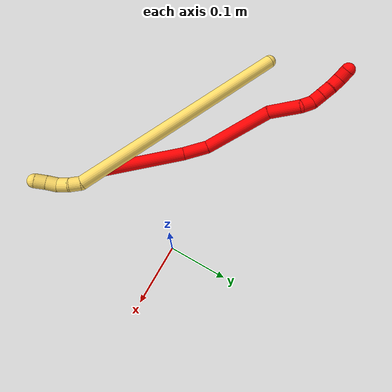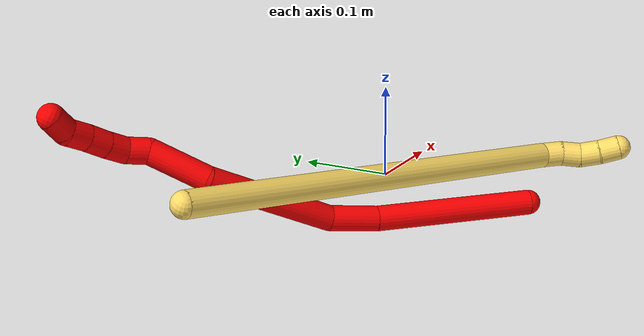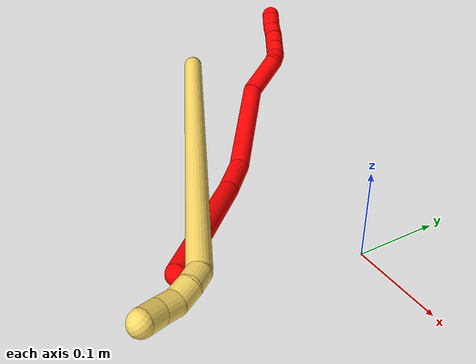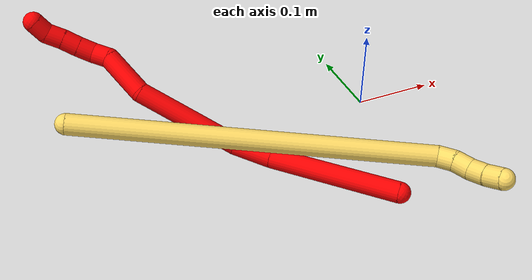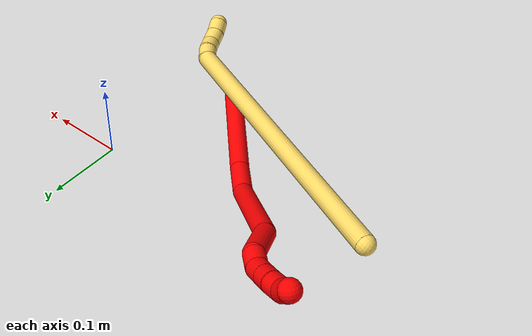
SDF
<sdf version="1.7">
 <world name="default">
  <model name="photoneo_s_sensor">
   <static>1</static>
   <pose>0 0 2 1.57079 1.57079 3.14159</pose>
   <link name="link">
    <inertial><mass>0.1</mass></inertial>
    <sensor name="sensor" type="depth">
     <update_rate>30</update_rate>
     <camera>
      <horizontal_fov>1.22</horizontal_fov>
      <image><width>1920</width><height>1200</height><format>B8G8R8</format></image>
      <clip><near>0.1</near><far>4</far></clip>
      <depth_camera><output>points</output></depth_camera>
     </camera>
     <plugin name="camera_plugin" filename="libgazebo_ros_depth_camera.so">
      <baseline>0.2</baseline>
      <alwaysOn>1</alwaysOn>
      <updateRate>0.0</updateRate>
      <cameraName>camera_ir</cameraName>
      <imageTopicName>/camera/color/image_raw</imageTopicName>
      <cameraInfoTopicName>/camera/color/camera_info</cameraInfoTopicName>
      <depthImageTopicName>/camera/depth/image_raw</depthImageTopicName>
      <depthImageCameraInfoTopicName>/camera/depth/camera_info</depthImageCameraInfoTopicName>
      <pointCloudTopicName>/camera/depth/points</pointCloudTopicName>
      <frameName>fr_optical</frameName>
      <pointCloudCutoff>0.1</pointCloudCutoff>
      <pointCloudCutoffMax>2.0</pointCloudCutoffMax>
      <distortionK1>0</distortionK1>
      <distortionK2>0</distortionK2>
      <distortionK3>0</distortionK3>
      <distortionT1>0</distortionT1>
      <distortionT2>0</distortionT2>
      <CxPrime>0</CxPrime>
      <Cx>0</Cx>
      <Cy>0</Cy>
      <focalLength>0</focalLength>
      <hackBaseline>0</hackBaseline>
     </plugin>
    </sensor>
   </link>
  </model>
  <model name="bin">
   <static>1</static>
   <link name="bottom">
    <collision name="collision-bottom">
     <pose>0 0 -0.01 0 -0 0</pose>
     <geometry><box><size>0.8 0.6 0.02</size></box></geometry>
     <surface>
      <friction><ode><mu>100</mu><mu2>100</mu2></ode></friction>
      <contact><collide_bitmask>65535</collide_bitmask></contact>
     </surface>
    </collision>
   </link>
   <link name="west_wall">
    <collision name="collision-west_wall">
     <pose>-0.41 0 0.1 0 -0 0</pose>
     <geometry><box><size>0.02 0.6 0.2</size></box></geometry>
     <surface>
      <friction><ode><mu>100</mu><mu2>100</mu2></ode></friction>
      <contact><collide_bitmask>65535</collide_bitmask></contact>
     </surface>
    </collision>
   </link>
   <link name="east_wall">
    <collision name="collision-east_wall">
     <pose>0.41 0 0.1 0 -0 0</pose>
     <geometry><box><size>0.02 0.6 0.2</size></box></geometry>
     <surface>
      <friction><ode><mu>100</mu><mu2>100</mu2></ode></friction>
      <contact><collide_bitmask>65535</collide_bitmask></contact>
     </surface>
    </collision>
   </link>
   <link name="south_wall">
    <collision name="collision-south_wall">
     <pose>0 -0.31 0.1 0 -0 0</pose>
     <geometry><box><size>0.8 0.02 0.2</size></box></geometry>
     <surface>
      <friction><ode><mu>100</mu><mu2>100</mu2></ode></friction>
      <contact><collide_bitmask>65535</collide_bitmask></contact>
     </surface>
    </collision>
   </link>
   <link name="north_wall">
    <collision name="collision-north_wall">
     <pose>0 0.31 0.1 0 -0 0</pose>
     <geometry><box><size>0.8 0.02 0.2</size></box></geometry>
     <surface>
      <friction><ode><mu>100</mu><mu2>100</mu2></ode></friction>
      <contact><collide_bitmask>65535</collide_bitmask></contact>
     </surface>
    </collision>
   </link>
  </model>
  <model name="2">
   <static>0</static>
   <link name="2">
    <collision name="collision-cylinder-e_1_1_4">
     <pose>-0.048869 0.048779 0.039446 -0.890786 -0.661808 0.325103</pose>
     <geometry><cylinder><radius>0.0125</radius><length>0.159042</length></cylinder></geometry>
     <surface>
      <friction><ode><mu>1.16</mu><mu2>1.16</mu2><slip1>0</slip1><slip2>0</slip2></ode></friction>
      <contact><ode><kp>1e+06</kp><kd>1</kd><max_vel>0</max_vel><min_depth>0.001</min_depth></ode></contact>
     </surface>
    </collision>
    <visual name="visual-cylinder-e_1_1_4">
     <pose>-0.048869 0.048779 0.039446 -0.890786 -0.661808 0.325103</pose>
     <geometry><cylinder><radius>0.0125</radius><length>0.159042</length></cylinder></geometry>
     <material><ambient>1 0 0 1</ambient></material>
    </visual>
    <collision name="collision-cylinder-e_2_4_5">
     <pose>-0.11258 0.114149 0.088171 -1.0609 -0.662919 0.398357</pose>
     <geometry><cylinder><radius>0.0125</radius><length>0.048233</length></cylinder></geometry>
     <surface>
      <friction><ode><mu>1.16</mu><mu2>1.16</mu2><slip1>0</slip1><slip2>0</slip2></ode></friction>
      <contact><ode><kp>1e+06</kp><kd>1</kd><max_vel>0</max_vel><min_depth>0.001</min_depth></ode></contact>
     </surface>
    </collision>
    <visual name="visual-cylinder-e_2_4_5">
     <pose>-0.11258 0.114149 0.088171 -1.0609 -0.662919 0.398357</pose>
     <geometry><cylinder><radius>0.0125</radius><length>0.048233</length></cylinder></geometry>
     <material><ambient>1 0 0 1</ambient></material>
    </visual>
    <collision name="collision-cylinder-e_3_5_6">
     <pose>-0.162318 0.185791 0.103872 -1.45465 -0.561904 0.502875</pose>
     <geometry><cylinder><radius>0.0125</radius><length>0.130991</length></cylinder></geometry>
     <surface>
      <friction><ode><mu>1.16</mu><mu2>1.16</mu2><slip1>0</slip1><slip2>0</slip2></ode></friction>
      <contact><ode><kp>1e+06</kp><kd>1</kd><max_vel>0</max_vel><min_depth>0.001</min_depth></ode></contact>
     </surface>
    </collision>
    <visual name="visual-cylinder-e_3_5_6">
     <pose>-0.162318 0.185791 0.103872 -1.45465 -0.561904 0.502875</pose>
     <geometry><cylinder><radius>0.0125</radius><length>0.130991</length></cylinder></geometry>
     <material><ambient>1 0 0 1</ambient></material>
    </visual>
    <collision name="collision-cylinder-e_4_6_7">
     <pose>-0.22145 0.257901 0.109779 -1.60098 -0.957281 0.98218</pose>
     <geometry><cylinder><radius>0.0125</radius><length>0.059285</length></cylinder></geometry>
     <surface>
      <friction><ode><mu>1.16</mu><mu2>1.16</mu2><slip1>0</slip1><slip2>0</slip2></ode></friction>
      <contact><ode><kp>1e+06</kp><kd>1</kd><max_vel>0</max_vel><min_depth>0.001</min_depth></ode></contact>
     </surface>
    </collision>
    <visual name="visual-cylinder-e_4_6_7">
     <pose>-0.22145 0.257901 0.109779 -1.60098 -0.957281 0.98218</pose>
     <geometry><cylinder><radius>0.0125</radius><length>0.059285</length></cylinder></geometry>
     <material><ambient>1 0 0 1</ambient></material>
    </visual>
    <collision name="collision-cylinder-e_5_7_8">
     <pose>-0.25181 0.282644 0.113276 -1.08962 -0.614927 0.380195</pose>
     <geometry><cylinder><radius>0.0125</radius><length>0.021226</length></cylinder></geometry>
     <surface>
      <friction><ode><mu>1.16</mu><mu2>1.16</mu2><slip1>0</slip1><slip2>0</slip2></ode></friction>
      <contact><ode><kp>1e+06</kp><kd>1</kd><max_vel>0</max_vel><min_depth>0.001</min_depth></ode></contact>
     </surface>
    </collision>
    <visual name="visual-cylinder-e_5_7_8">
     <pose>-0.25181 0.282644 0.113276 -1.08962 -0.614927 0.380195</pose>
     <geometry><cylinder><radius>0.0125</radius><length>0.021226</length></cylinder></geometry>
     <material><ambient>1 0 0 1</ambient></material>
    </visual>
    <collision name="collision-cylinder-e_6_8_9">
     <pose>-0.261672 0.299768 0.118418 -1.45169 -0.374835 0.333478</pose>
     <geometry><cylinder><radius>0.0125</radius><length>0.020431</length></cylinder></geometry>
     <surface>
      <friction><ode><mu>1.16</mu><mu2>1.16</mu2><slip1>0</slip1><slip2>0</slip2></ode></friction>
      <contact><ode><kp>1e+06</kp><kd>1</kd><max_vel>0</max_vel><min_depth>0.001</min_depth></ode></contact>
     </surface>
    </collision>
    <visual name="visual-cylinder-e_6_8_9">
     <pose>-0.261672 0.299768 0.118418 -1.45169 -0.374835 0.333478</pose>
     <geometry><cylinder><radius>0.0125</radius><length>0.020431</length></cylinder></geometry>
     <material><ambient>1 0 0 1</ambient></material>
    </visual>
    <collision name="collision-cylinder-e_7_9_10">
     <pose>-0.269241 0.318574 0.120079 -1.51418 -0.387461 0.366611</pose>
     <geometry><cylinder><radius>0.0125</radius><length>0.020268</length></cylinder></geometry>
     <surface>
      <friction><ode><mu>1.16</mu><mu2>1.16</mu2><slip1>0</slip1><slip2>0</slip2></ode></friction>
      <contact><ode><kp>1e+06</kp><kd>1</kd><max_vel>0</max_vel><min_depth>0.001</min_depth></ode></contact>
     </surface>
    </collision>
    <visual name="visual-cylinder-e_7_9_10">
     <pose>-0.269241 0.318574 0.120079 -1.51418 -0.387461 0.366611</pose>
     <geometry><cylinder><radius>0.0125</radius><length>0.020268</length></cylinder></geometry>
     <material><ambient>1 0 0 1</ambient></material>
    </visual>
    <collision name="collision-cylinder-e_8_10_11">
     <pose>-0.276034 0.337628 0.121728 -1.45586 -0.295039 0.263329</pose>
     <geometry><cylinder><radius>0.0125</radius><length>0.020383</length></cylinder></geometry>
     <surface>
      <friction><ode><mu>1.16</mu><mu2>1.16</mu2><slip1>0</slip1><slip2>0</slip2></ode></friction>
      <contact><ode><kp>1e+06</kp><kd>1</kd><max_vel>0</max_vel><min_depth>0.001</min_depth></ode></contact>
     </surface>
    </collision>
    <visual name="visual-cylinder-e_8_10_11">
     <pose>-0.276034 0.337628 0.121728 -1.45586 -0.295039 0.263329</pose>
     <geometry><cylinder><radius>0.0125</radius><length>0.020383</length></cylinder></geometry>
     <material><ambient>1 0 0 1</ambient></material>
    </visual>
    <collision name="collision-cylinder-e_9_11_2">
     <pose>-0.282158 0.356323 0.119639 -1.91282 -0.31927 0.448762</pose>
     <geometry><cylinder><radius>0.0125</radius><length>0.020141</length></cylinder></geometry>
     <surface>
      <friction><ode><mu>1.16</mu><mu2>1.16</mu2><slip1>0</slip1><slip2>0</slip2></ode></friction>
      <contact><ode><kp>1e+06</kp><kd>1</kd><max_vel>0</max_vel><min_depth>0.001</min_depth></ode></contact>
     </surface>
    </collision>
    <visual name="visual-cylinder-e_9_11_2">
     <pose>-0.282158 0.356323 0.119639 -1.91282 -0.31927 0.448762</pose>
     <geometry><cylinder><radius>0.0125</radius><length>0.020141</length></cylinder></geometry>
     <material><ambient>1 0 0 1</ambient></material>
    </visual>
    <collision name="collision-sphere-2">
     <pose>-0.285319 0.365331 0.116432 0 -0 0</pose>
     <geometry><sphere><radius>0.0125</radius></sphere></geometry>
     <surface>
      <friction><ode><mu>1.16</mu><mu2>1.16</mu2><slip1>0</slip1><slip2>0</slip2></ode></friction>
      <contact><ode><kp>1e+06</kp><kd>1</kd><max_vel>0</max_vel><min_depth>0.001</min_depth></ode></contact>
     </surface>
    </collision>
    <visual name="visual-sphere-2">
     <pose>-0.285319 0.365331 0.116432 0 -0 0</pose>
     <geometry><sphere><radius>0.0125</radius></sphere></geometry>
     <material><ambient>1 0 0 1</ambient></material>
    </visual>
    <collision name="collision-sphere-11">
     <pose>-0.278997 0.347315 0.122846 0 -0 0</pose>
     <geometry><sphere><radius>0.0125</radius></sphere></geometry>
     <surface>
      <friction><ode><mu>1.16</mu><mu2>1.16</mu2><slip1>0</slip1><slip2>0</slip2></ode></friction>
      <contact><ode><kp>1e+06</kp><kd>1</kd><max_vel>0</max_vel><min_depth>0.001</min_depth></ode></contact>
     </surface>
    </collision>
    <visual name="visual-sphere-11">
     <pose>-0.278997 0.347315 0.122846 0 -0 0</pose>
     <geometry><sphere><radius>0.0125</radius></sphere></geometry>
     <material><ambient>1 0 0 1</ambient></material>
    </visual>
    <collision name="collision-sphere-10">
     <pose>-0.27307 0.327942 0.12061 0 -0 0</pose>
     <geometry><sphere><radius>0.0125</radius></sphere></geometry>
     <surface>
      <friction><ode><mu>1.16</mu><mu2>1.16</mu2><slip1>0</slip1><slip2>0</slip2></ode></friction>
      <contact><ode><kp>1e+06</kp><kd>1</kd><max_vel>0</max_vel><min_depth>0.001</min_depth></ode></contact>
     </surface>
    </collision>
    <visual name="visual-sphere-10">
     <pose>-0.27307 0.327942 0.12061 0 -0 0</pose>
     <geometry><sphere><radius>0.0125</radius></sphere></geometry>
     <material><ambient>1 0 0 1</ambient></material>
    </visual>
    <collision name="collision-sphere-9">
     <pose>-0.265412 0.309206 0.119548 0 -0 0</pose>
     <geometry><sphere><radius>0.0125</radius></sphere></geometry>
     <surface>
      <friction><ode><mu>1.16</mu><mu2>1.16</mu2><slip1>0</slip1><slip2>0</slip2></ode></friction>
      <contact><ode><kp>1e+06</kp><kd>1</kd><max_vel>0</max_vel><min_depth>0.001</min_depth></ode></contact>
     </surface>
    </collision>
    <visual name="visual-sphere-9">
     <pose>-0.265412 0.309206 0.119548 0 -0 0</pose>
     <geometry><sphere><radius>0.0125</radius></sphere></geometry>
     <material><ambient>1 0 0 1</ambient></material>
    </visual>
    <collision name="collision-sphere-4">
     <pose>-0.097739 0.097558 0.078893 0 -0 0</pose>
     <geometry><sphere><radius>0.0125</radius></sphere></geometry>
     <surface>
      <friction><ode><mu>1.16</mu><mu2>1.16</mu2><slip1>0</slip1><slip2>0</slip2></ode></friction>
      <contact><ode><kp>1e+06</kp><kd>1</kd><max_vel>0</max_vel><min_depth>0.001</min_depth></ode></contact>
     </surface>
    </collision>
    <visual name="visual-sphere-4">
     <pose>-0.097739 0.097558 0.078893 0 -0 0</pose>
     <geometry><sphere><radius>0.0125</radius></sphere></geometry>
     <material><ambient>1 0 0 1</ambient></material>
    </visual>
    <collision name="collision-sphere-1">
     <geometry><sphere><radius>0.0125</radius></sphere></geometry>
     <surface>
      <friction><ode><mu>1.16</mu><mu2>1.16</mu2><slip1>0</slip1><slip2>0</slip2></ode></friction>
      <contact><ode><kp>1e+06</kp><kd>1</kd><max_vel>0</max_vel><min_depth>0.001</min_depth></ode></contact>
     </surface>
    </collision>
    <visual name="visual-sphere-1">
     <geometry><sphere><radius>0.0125</radius></sphere></geometry>
     <material><ambient>1 0 0 1</ambient></material>
    </visual>
    <collision name="collision-sphere-8">
     <pose>-0.257932 0.290329 0.117289 0 -0 0</pose>
     <geometry><sphere><radius>0.0125</radius></sphere></geometry>
     <surface>
      <friction><ode><mu>1.16</mu><mu2>1.16</mu2><slip1>0</slip1><slip2>0</slip2></ode></friction>
      <contact><ode><kp>1e+06</kp><kd>1</kd><max_vel>0</max_vel><min_depth>0.001</min_depth></ode></contact>
     </surface>
    </collision>
    <visual name="visual-sphere-8">
     <pose>-0.257932 0.290329 0.117289 0 -0 0</pose>
     <geometry><sphere><radius>0.0125</radius></sphere></geometry>
     <material><ambient>1 0 0 1</ambient></material>
    </visual>
    <collision name="collision-sphere-5">
     <pose>-0.127422 0.130739 0.097449 0 -0 0</pose>
     <geometry><sphere><radius>0.0125</radius></sphere></geometry>
     <surface>
      <friction><ode><mu>1.16</mu><mu2>1.16</mu2><slip1>0</slip1><slip2>0</slip2></ode></friction>
      <contact><ode><kp>1e+06</kp><kd>1</kd><max_vel>0</max_vel><min_depth>0.001</min_depth></ode></contact>
     </surface>
    </collision>
    <visual name="visual-sphere-5">
     <pose>-0.127422 0.130739 0.097449 0 -0 0</pose>
     <geometry><sphere><radius>0.0125</radius></sphere></geometry>
     <material><ambient>1 0 0 1</ambient></material>
    </visual>
    <collision name="collision-sphere-6">
     <pose>-0.197214 0.240843 0.110295 0 -0 0</pose>
     <geometry><sphere><radius>0.0125</radius></sphere></geometry>
     <surface>
      <friction><ode><mu>1.16</mu><mu2>1.16</mu2><slip1>0</slip1><slip2>0</slip2></ode></friction>
      <contact><ode><kp>1e+06</kp><kd>1</kd><max_vel>0</max_vel><min_depth>0.001</min_depth></ode></contact>
     </surface>
    </collision>
    <visual name="visual-sphere-6">
     <pose>-0.197214 0.240843 0.110295 0 -0 0</pose>
     <geometry><sphere><radius>0.0125</radius></sphere></geometry>
     <material><ambient>1 0 0 1</ambient></material>
    </visual>
    <collision name="collision-sphere-7">
     <pose>-0.245687 0.27496 0.109264 0 -0 0</pose>
     <geometry><sphere><radius>0.0125</radius></sphere></geometry>
     <surface>
      <friction><ode><mu>1.16</mu><mu2>1.16</mu2><slip1>0</slip1><slip2>0</slip2></ode></friction>
      <contact><ode><kp>1e+06</kp><kd>1</kd><max_vel>0</max_vel><min_depth>0.001</min_depth></ode></contact>
     </surface>
    </collision>
    <visual name="visual-sphere-7">
     <pose>-0.245687 0.27496 0.109264 0 -0 0</pose>
     <geometry><sphere><radius>0.0125</radius></sphere></geometry>
     <material><ambient>1 0 0 1</ambient></material>
    </visual>
    <inertial>
     <pose>-0.150101 0.171059 0.085579 0 -0 0</pose>
     <mass>0.5</mass>
     <inertia><ixx>0.000576</ixx><ixy>0</ixy><ixz>0</ixz><iyy>0.000555</iyy><iyz>0</iyz><izz>-5e-05</izz></inertia>
    </inertial>
   </link>
   <pose>-0.055209 -0.188694 0.014277 2.62856 0.182334 -1.7185</pose>
  </model>
  <model name="5">
   <static>0</static>
   <link name="5">
    <collision name="collision-cylinder-e_1_1_4">
     <pose>0.153064 -0.13927 -0.034871 1.81613 0.817396 1.01318</pose>
     <geometry><cylinder><radius>0.0125</radius><length>0.419719</length></cylinder></geometry>
     <surface>
      <friction><ode><mu>1.16</mu><mu2>1.16</mu2><slip1>0</slip1><slip2>0</slip2></ode></friction>
      <contact><ode><kp>1e+06</kp><kd>1</kd><max_vel>0</max_vel><min_depth>0.001</min_depth></ode></contact>
     </surface>
    </collision>
    <visual name="visual-cylinder-e_1_1_4">
     <pose>0.153064 -0.13927 -0.034871 1.81613 0.817396 1.01318</pose>
     <geometry><cylinder><radius>0.0125</radius><length>0.419719</length></cylinder></geometry>
     <material><ambient>1 0.858824 0.4 1</ambient></material>
    </visual>
    <collision name="collision-cylinder-e_2_4_5">
     <pose>0.311043 -0.287138 -0.068015 1.37258 0.510794 0.421391</pose>
     <geometry><cylinder><radius>0.0125</radius><length>0.020105</length></cylinder></geometry>
     <surface>
      <friction><ode><mu>1.16</mu><mu2>1.16</mu2><slip1>0</slip1><slip2>0</slip2></ode></friction>
      <contact><ode><kp>1e+06</kp><kd>1</kd><max_vel>0</max_vel><min_depth>0.001</min_depth></ode></contact>
     </surface>
    </collision>
    <visual name="visual-cylinder-e_2_4_5">
     <pose>0.311043 -0.287138 -0.068015 1.37258 0.510794 0.421391</pose>
     <geometry><cylinder><radius>0.0125</radius><length>0.020105</length></cylinder></geometry>
     <material><ambient>1 0.858824 0.4 1</ambient></material>
    </visual>
    <collision name="collision-cylinder-e_3_5_6">
     <pose>0.318727 -0.305309 -0.06484 1.42072 0.278623 0.240063</pose>
     <geometry><cylinder><radius>0.0125</radius><length>0.020141</length></cylinder></geometry>
     <surface>
      <friction><ode><mu>1.16</mu><mu2>1.16</mu2><slip1>0</slip1><slip2>0</slip2></ode></friction>
      <contact><ode><kp>1e+06</kp><kd>1</kd><max_vel>0</max_vel><min_depth>0.001</min_depth></ode></contact>
     </surface>
    </collision>
    <visual name="visual-cylinder-e_3_5_6">
     <pose>0.318727 -0.305309 -0.06484 1.42072 0.278623 0.240063</pose>
     <geometry><cylinder><radius>0.0125</radius><length>0.020141</length></cylinder></geometry>
     <material><ambient>1 0.858824 0.4 1</ambient></material>
    </visual>
    <collision name="collision-cylinder-e_4_6_7">
     <pose>0.324231 -0.323344 -0.058789 1.07259 0.276545 0.165059</pose>
     <geometry><cylinder><radius>0.0125</radius><length>0.020027</length></cylinder></geometry>
     <surface>
      <friction><ode><mu>1.16</mu><mu2>1.16</mu2><slip1>0</slip1><slip2>0</slip2></ode></friction>
      <contact><ode><kp>1e+06</kp><kd>1</kd><max_vel>0</max_vel><min_depth>0.001</min_depth></ode></contact>
     </surface>
    </collision>
    <visual name="visual-cylinder-e_4_6_7">
     <pose>0.324231 -0.323344 -0.058789 1.07259 0.276545 0.165059</pose>
     <geometry><cylinder><radius>0.0125</radius><length>0.020027</length></cylinder></geometry>
     <material><ambient>1 0.858824 0.4 1</ambient></material>
    </visual>
    <collision name="collision-cylinder-e_5_7_2">
     <pose>0.330815 -0.339794 -0.049554 1.0453 0.395055 0.229579</pose>
     <geometry><cylinder><radius>0.0125</radius><length>0.020009</length></cylinder></geometry>
     <surface>
      <friction><ode><mu>1.16</mu><mu2>1.16</mu2><slip1>0</slip1><slip2>0</slip2></ode></friction>
      <contact><ode><kp>1e+06</kp><kd>1</kd><max_vel>0</max_vel><min_depth>0.001</min_depth></ode></contact>
     </surface>
    </collision>
    <visual name="visual-cylinder-e_5_7_2">
     <pose>0.330815 -0.339794 -0.049554 1.0453 0.395055 0.229579</pose>
     <geometry><cylinder><radius>0.0125</radius><length>0.020009</length></cylinder></geometry>
     <material><ambient>1 0.858824 0.4 1</ambient></material>
    </visual>
    <collision name="collision-sphere-2">
     <pose>0.334665 -0.347782 -0.044922 0 -0 0</pose>
     <geometry><sphere><radius>0.0125</radius></sphere></geometry>
     <surface>
      <friction><ode><mu>1.16</mu><mu2>1.16</mu2><slip1>0</slip1><slip2>0</slip2></ode></friction>
      <contact><ode><kp>1e+06</kp><kd>1</kd><max_vel>0</max_vel><min_depth>0.001</min_depth></ode></contact>
     </surface>
    </collision>
    <visual name="visual-sphere-2">
     <pose>0.334665 -0.347782 -0.044922 0 -0 0</pose>
     <geometry><sphere><radius>0.0125</radius></sphere></geometry>
     <material><ambient>1 0.858824 0.4 1</ambient></material>
    </visual>
    <collision name="collision-sphere-7">
     <pose>0.326965 -0.331806 -0.054186 0 -0 0</pose>
     <geometry><sphere><radius>0.0125</radius></sphere></geometry>
     <surface>
      <friction><ode><mu>1.16</mu><mu2>1.16</mu2><slip1>0</slip1><slip2>0</slip2></ode></friction>
      <contact><ode><kp>1e+06</kp><kd>1</kd><max_vel>0</max_vel><min_depth>0.001</min_depth></ode></contact>
     </surface>
    </collision>
    <visual name="visual-sphere-7">
     <pose>0.326965 -0.331806 -0.054186 0 -0 0</pose>
     <geometry><sphere><radius>0.0125</radius></sphere></geometry>
     <material><ambient>1 0.858824 0.4 1</ambient></material>
    </visual>
    <collision name="collision-sphere-6">
     <pose>0.321497 -0.314882 -0.063393 0 -0 0</pose>
     <geometry><sphere><radius>0.0125</radius></sphere></geometry>
     <surface>
      <friction><ode><mu>1.16</mu><mu2>1.16</mu2><slip1>0</slip1><slip2>0</slip2></ode></friction>
      <contact><ode><kp>1e+06</kp><kd>1</kd><max_vel>0</max_vel><min_depth>0.001</min_depth></ode></contact>
     </surface>
    </collision>
    <visual name="visual-sphere-6">
     <pose>0.321497 -0.314882 -0.063393 0 -0 0</pose>
     <geometry><sphere><radius>0.0125</radius></sphere></geometry>
     <material><ambient>1 0.858824 0.4 1</ambient></material>
    </visual>
    <collision name="collision-sphere-5">
     <pose>0.315958 -0.295736 -0.066288 0 -0 0</pose>
     <geometry><sphere><radius>0.0125</radius></sphere></geometry>
     <surface>
      <friction><ode><mu>1.16</mu><mu2>1.16</mu2><slip1>0</slip1><slip2>0</slip2></ode></friction>
      <contact><ode><kp>1e+06</kp><kd>1</kd><max_vel>0</max_vel><min_depth>0.001</min_depth></ode></contact>
     </surface>
    </collision>
    <visual name="visual-sphere-5">
     <pose>0.315958 -0.295736 -0.066288 0 -0 0</pose>
     <geometry><sphere><radius>0.0125</radius></sphere></geometry>
     <material><ambient>1 0.858824 0.4 1</ambient></material>
    </visual>
    <collision name="collision-sphere-1">
     <geometry><sphere><radius>0.0125</radius></sphere></geometry>
     <surface>
      <friction><ode><mu>1.16</mu><mu2>1.16</mu2><slip1>0</slip1><slip2>0</slip2></ode></friction>
      <contact><ode><kp>1e+06</kp><kd>1</kd><max_vel>0</max_vel><min_depth>0.001</min_depth></ode></contact>
     </surface>
    </collision>
    <visual name="visual-sphere-1">
     <geometry><sphere><radius>0.0125</radius></sphere></geometry>
     <material><ambient>1 0.858824 0.4 1</ambient></material>
    </visual>
    <collision name="collision-sphere-4">
     <pose>0.306129 -0.278541 -0.069741 0 -0 0</pose>
     <geometry><sphere><radius>0.0125</radius></sphere></geometry>
     <surface>
      <friction><ode><mu>1.16</mu><mu2>1.16</mu2><slip1>0</slip1><slip2>0</slip2></ode></friction>
      <contact><ode><kp>1e+06</kp><kd>1</kd><max_vel>0</max_vel><min_depth>0.001</min_depth></ode></contact>
     </surface>
    </collision>
    <visual name="visual-sphere-4">
     <pose>0.306129 -0.278541 -0.069741 0 -0 0</pose>
     <geometry><sphere><radius>0.0125</radius></sphere></geometry>
     <material><ambient>1 0.858824 0.4 1</ambient></material>
    </visual>
    <inertial>
     <pose>0.180059 -0.167302 -0.038956 0 -0 0</pose>
     <mass>0.5</mass>
     <inertia>
      <ixx>0.005856</ixx>
      <ixy>0</ixy>
      <ixz>0</ixz>
      <iyy>0.006478</iyy>
      <iyz>0</iyz>
      <izz>-0.000407</izz>
     </inertia>
    </inertial>
   </link>
   <pose>-0.387587 -0.007379 0.085354 0.397227 -0.414736 0.140475</pose>
  </model>
 </world>
</sdf>
